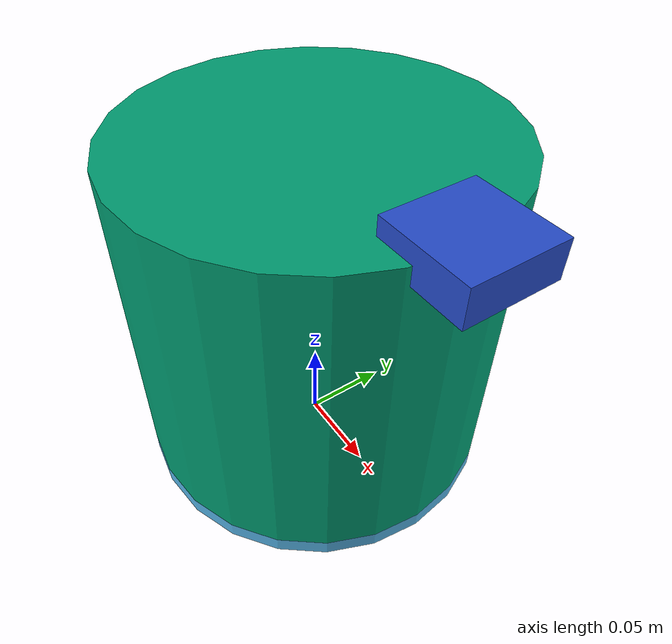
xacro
<?xml version="1.0" encoding="utf-8"?>

<robot xmlns:xacro="http://www.ros.org/wiki/xacro" name="simple_omni_robot">
  <!-- robot_state_publisher no longer support tf_prefix in ROS Noetic...-->
  <xacro:arg name="link_prefix" default="" />
  <xacro:arg name="id_num" default="" />

  <xacro:include filename="$(find robot_description)/urdf/simple-goal.gazebo" />
  <!-- According TB3 -->
  <xacro:property name="RADIUS" value="0.105" />
  <xacro:property name="HEIGHT" value="0.192" />

  <!-- Links -->
  <link name="$(arg link_prefix)/head">
    <visual>
      <origin xyz="0 0 0" rpy="0 0 0" />
      <geometry>
        <box size="0.05 0.05 0.02" />
      </geometry>
    </visual>
  </link>

  <link name="$(arg link_prefix)/base_footprint">
    <visual>
      <origin xyz="0 0 0.005" rpy="0 0 0" />
      <geometry>
        <cylinder radius="${RADIUS}" length="0.01" />
      </geometry>
    </visual>
  </link>

  <link name="$(arg link_prefix)/base_link">
    <inertial>
      <origin xyz="0 0 0" rpy="0 0 0" />
      <mass value="50.0" />
      <inertia
        ixx="50.0"
        ixy="0.0"
        ixz="0.0"
        iyy="50.0"
        iyz="0.0"
        izz="50.0" />
    </inertial>

    <visual>
      <geometry>
        <cylinder radius="${RADIUS}" length="${HEIGHT}" />
      </geometry>
    </visual>
  </link>

  <!-- Joints -->
  <joint name="head_joint" type="fixed">
    <origin xyz="${RADIUS} 0 ${HEIGHT/2}" rpy="0 0 0" />
    <parent link="$(arg link_prefix)/base_link"/>
    <child link="$(arg link_prefix)/head" />
  </joint>

  <joint name="base_link_joint" type="fixed">
    <origin xyz="0.0 0 ${HEIGHT/2+0.01}" rpy="0 0 0" />
    <parent link="$(arg link_prefix)/base_footprint"/>
    <child link="$(arg link_prefix)/base_link" />
  </joint>

  <xacro:simple_goal_gazebo prefix="$(arg link_prefix)" id_num="$(arg id_num)" />
</robot>
